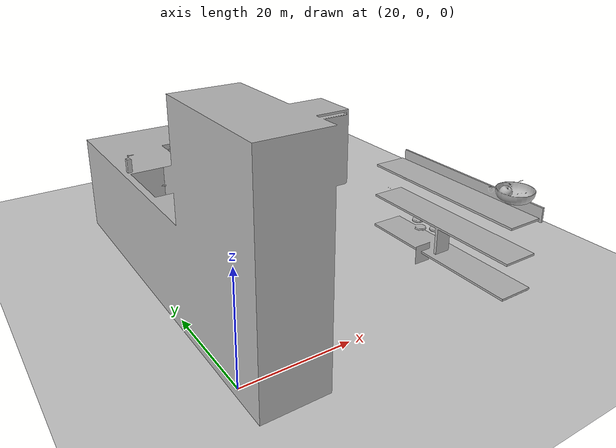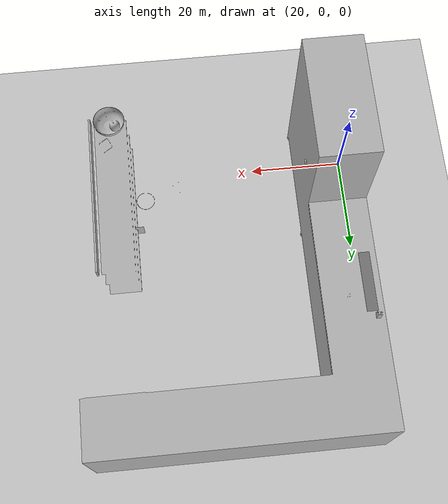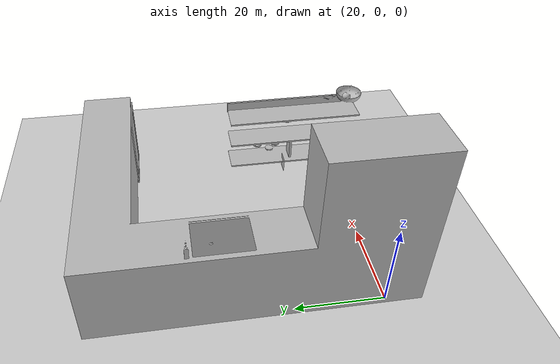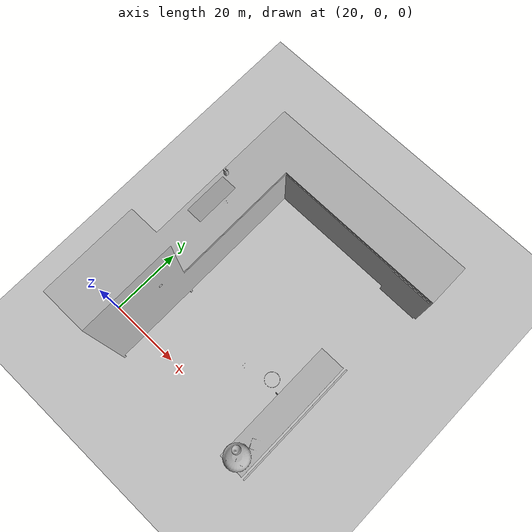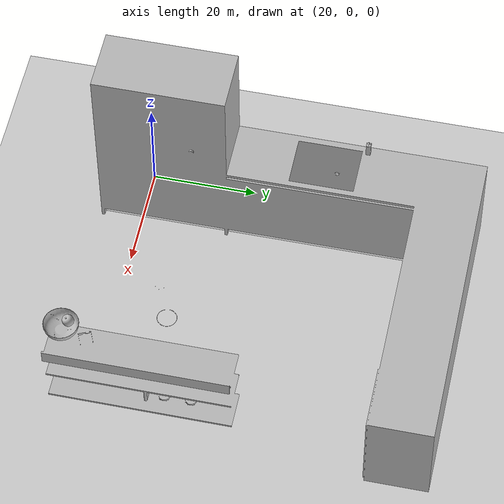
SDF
<?xml version="1.0"?>
<sdf version="1.4">
  <world name="default">
    <include>
      <uri>model://sun</uri>
    </include>
    <include>
      <uri>model://ground_plane</uri>
    </include>
    <include>
      <uri>model://Kitchen</uri>
      <pose>15.64 -12.89759 0 0 0 0</pose>
    </include>
  </world>
</sdf>

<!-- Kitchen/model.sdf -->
<sdf version="1.5">
    <model name="kitchen">
        <static>true</static>
        <link name="kitchen">
            <visual name="visual">
                <geometry>
                    <mesh>
                        <uri>model://Kitchen/meshes/model.dae</uri>
                        <scale>0.5 0.5 0.5</scale>
                        <pose>0 0 0 0 0 0</pose>
                    </mesh>
                </geometry>
            </visual>
            <collision name="collision">
                <geometry>
                    <mesh>
                        <uri>model://Kitchen/meshes/model.dae</uri>
                        <scale>0.5 0.5 0.5</scale>
                    </mesh>
                </geometry>
            </collision>
        </link>
    </model>
</sdf>
